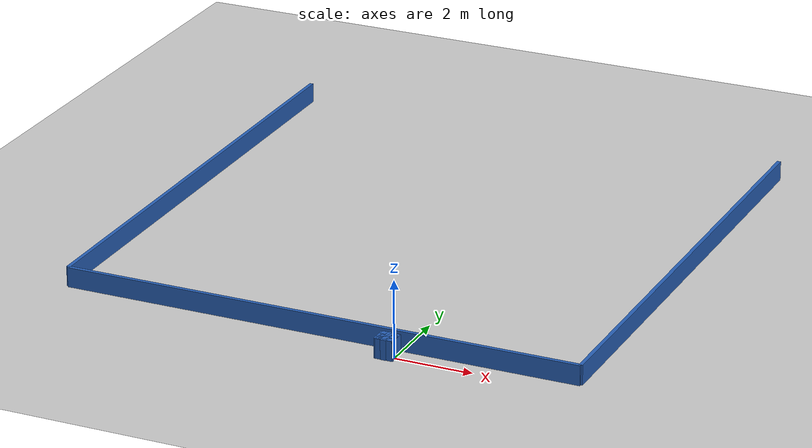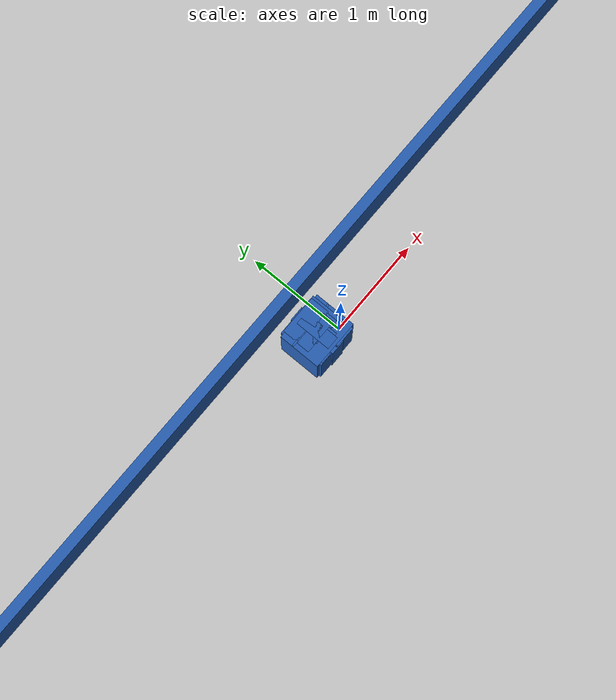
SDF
<?xml version="1.0" ?>
    <sdf version="1.5">
      <world name="default">
        <!-- A global light source -->
        <include>
          <uri>model://sun</uri>
        </include>
        <!-- A ground plane -->
        <include>
          <uri>model://ground_plane</uri>
        </include>

    <model name='libopen_space_final_T2B_51_1'>
      <static>1</static>
      <pose frame=''>-0.225000 0.075000 0.000000 0.000000 0.000000 0.000000</pose>
      <link name='link'>
        <inertial>
          <mass>1</mass>
          <inertia>
            <ixx>0.145833</ixx>
            <ixy>0</ixy>
            <ixz>0</ixz>
            <iyy>0.145833</iyy>
            <iyz>0</iyz>
            <izz>0.125</izz>
          </inertia>
        </inertial>
        <collision name='collision'>
          <geometry>
            <box>
              <size>0.50 0.42 1</size>
            </box>
          </geometry>
          <max_contacts>10</max_contacts>
          <surface>
            <contact>
              <ode/>
            </contact>
            <bounce/>
            <friction>
              <torsional>
                <ode/>
              </torsional>
              <ode/>
            </friction>
          </surface>
        </collision>
        <visual name='visual'>
          <geometry>
            <box>
              <size>0.50 0.42 1</size>
            </box>
          </geometry>
	    <material>
              <ambient>0.152000 0.379000 0.720000 1</ambient>
	      <diffuse>0.152000 0.379000 0.720000 1</diffuse>
          </material>
          <material>
            <script>
              <name>Gazebo/Grey</name>
              <uri>file://media/materials/scripts/gazebo.material</uri>
            </script>
          </material>
        </visual>
        <self_collide>0</self_collide>
        <kinematic>0</kinematic>
        <gravity>1</gravity>
      </link>
      <plugin name='libopen_space_final_T2B_51_1' filename='libopen_space_final_T2B_51_1.so'/>
    </model>

    <model name='libopen_space_final_T2B_57_87'>
      <static>1</static>
      <pose frame=''>-0.225000 0.075000 0.000000 0.000000 0.000000 0.000000</pose>
      <link name='link'>
        <inertial>
          <mass>1</mass>
          <inertia>
            <ixx>0.145833</ixx>
            <ixy>0</ixy>
            <ixz>0</ixz>
            <iyy>0.145833</iyy>
            <iyz>0</iyz>
            <izz>0.125</izz>
          </inertia>
        </inertial>
        <collision name='collision'>
          <geometry>
            <box>
              <size>0.39 0.45 1</size>
            </box>
          </geometry>
          <max_contacts>10</max_contacts>
          <surface>
            <contact>
              <ode/>
            </contact>
            <bounce/>
            <friction>
              <torsional>
                <ode/>
              </torsional>
              <ode/>
            </friction>
          </surface>
        </collision>
        <visual name='visual'>
          <geometry>
            <box>
              <size>0.39 0.45 1</size>
            </box>
          </geometry>
	    <material>
              <ambient>0.152000 0.379000 0.720000 1</ambient>
	      <diffuse>0.152000 0.379000 0.720000 1</diffuse>
          </material>
          <material>
            <script>
              <name>Gazebo/Grey</name>
              <uri>file://media/materials/scripts/gazebo.material</uri>
            </script>
          </material>
        </visual>
        <self_collide>0</self_collide>
        <kinematic>0</kinematic>
        <gravity>1</gravity>
      </link>
      <plugin name='libopen_space_final_T2B_57_87' filename='libopen_space_final_T2B_57_87.so'/>
    </model>

    <model name='libopen_space_final_T2B_52_49'>
      <static>1</static>
      <pose frame=''>-0.225000 0.075000 0.000000 0.000000 0.000000 0.000000</pose>
      <link name='link'>
        <inertial>
          <mass>1</mass>
          <inertia>
            <ixx>0.145833</ixx>
            <ixy>0</ixy>
            <ixz>0</ixz>
            <iyy>0.145833</iyy>
            <iyz>0</iyz>
            <izz>0.125</izz>
          </inertia>
        </inertial>
        <collision name='collision'>
          <geometry>
            <box>
              <size>0.49 0.17 1</size>
            </box>
          </geometry>
          <max_contacts>10</max_contacts>
          <surface>
            <contact>
              <ode/>
            </contact>
            <bounce/>
            <friction>
              <torsional>
                <ode/>
              </torsional>
              <ode/>
            </friction>
          </surface>
        </collision>
        <visual name='visual'>
          <geometry>
            <box>
              <size>0.49 0.17 1</size>
            </box>
          </geometry>
	    <material>
              <ambient>0.152000 0.379000 0.720000 1</ambient>
	      <diffuse>0.152000 0.379000 0.720000 1</diffuse>
          </material>
          <material>
            <script>
              <name>Gazebo/Grey</name>
              <uri>file://media/materials/scripts/gazebo.material</uri>
            </script>
          </material>
        </visual>
        <self_collide>0</self_collide>
        <kinematic>0</kinematic>
        <gravity>1</gravity>
      </link>
      <plugin name='libopen_space_final_T2B_52_49' filename='libopen_space_final_T2B_52_49.so'/>
    </model>

    <model name='libopen_space_final_T2B_148_40'>
      <static>1</static>
      <pose frame=''>-0.225000 0.075000 0.000000 0.000000 0.000000 0.000000</pose>
      <link name='link'>
        <inertial>
          <mass>1</mass>
          <inertia>
            <ixx>0.145833</ixx>
            <ixy>0</ixy>
            <ixz>0</ixz>
            <iyy>0.145833</iyy>
            <iyz>0</iyz>
            <izz>0.125</izz>
          </inertia>
        </inertial>
        <collision name='collision'>
          <geometry>
            <box>
              <size>0.40 0.13 1</size>
            </box>
          </geometry>
          <max_contacts>10</max_contacts>
          <surface>
            <contact>
              <ode/>
            </contact>
            <bounce/>
            <friction>
              <torsional>
                <ode/>
              </torsional>
              <ode/>
            </friction>
          </surface>
        </collision>
        <visual name='visual'>
          <geometry>
            <box>
              <size>0.40 0.13 1</size>
            </box>
          </geometry>
	    <material>
              <ambient>0.152000 0.379000 0.720000 1</ambient>
	      <diffuse>0.152000 0.379000 0.720000 1</diffuse>
          </material>
          <material>
            <script>
              <name>Gazebo/Grey</name>
              <uri>file://media/materials/scripts/gazebo.material</uri>
            </script>
          </material>
        </visual>
        <self_collide>0</self_collide>
        <kinematic>0</kinematic>
        <gravity>1</gravity>
      </link>
      <plugin name='libopen_space_final_T2B_148_40' filename='libopen_space_final_T2B_148_40.so'/>
    </model>

    <model name='libopen_space_final_T2B_52_73'>
      <static>1</static>
      <pose frame=''>-0.225000 0.075000 0.000000 0.000000 0.000000 0.000000</pose>
      <link name='link'>
        <inertial>
          <mass>1</mass>
          <inertia>
            <ixx>0.145833</ixx>
            <ixy>0</ixy>
            <ixz>0</ixz>
            <iyy>0.145833</iyy>
            <iyz>0</iyz>
            <izz>0.125</izz>
          </inertia>
        </inertial>
        <collision name='collision'>
          <geometry>
            <box>
              <size>0.18 0.30 1</size>
            </box>
          </geometry>
          <max_contacts>10</max_contacts>
          <surface>
            <contact>
              <ode/>
            </contact>
            <bounce/>
            <friction>
              <torsional>
                <ode/>
              </torsional>
              <ode/>
            </friction>
          </surface>
        </collision>
        <visual name='visual'>
          <geometry>
            <box>
              <size>0.18 0.30 1</size>
            </box>
          </geometry>
	    <material>
              <ambient>0.152000 0.379000 0.720000 1</ambient>
	      <diffuse>0.152000 0.379000 0.720000 1</diffuse>
          </material>
          <material>
            <script>
              <name>Gazebo/Grey</name>
              <uri>file://media/materials/scripts/gazebo.material</uri>
            </script>
          </material>
        </visual>
        <self_collide>0</self_collide>
        <kinematic>0</kinematic>
        <gravity>1</gravity>
      </link>
      <plugin name='libopen_space_final_T2B_52_73' filename='libopen_space_final_T2B_52_73.so'/>
    </model>

    <model name='libopen_space_final_T2B_112_98'>
      <static>1</static>
      <pose frame=''>-0.225000 0.075000 0.000000 0.000000 0.000000 0.000000</pose>
      <link name='link'>
        <inertial>
          <mass>1</mass>
          <inertia>
            <ixx>0.145833</ixx>
            <ixy>0</ixy>
            <ixz>0</ixz>
            <iyy>0.145833</iyy>
            <iyz>0</iyz>
            <izz>0.125</izz>
          </inertia>
        </inertial>
        <collision name='collision'>
          <geometry>
            <box>
              <size>0.13 0.36 1</size>
            </box>
          </geometry>
          <max_contacts>10</max_contacts>
          <surface>
            <contact>
              <ode/>
            </contact>
            <bounce/>
            <friction>
              <torsional>
                <ode/>
              </torsional>
              <ode/>
            </friction>
          </surface>
        </collision>
        <visual name='visual'>
          <geometry>
            <box>
              <size>0.13 0.36 1</size>
            </box>
          </geometry>
	    <material>
              <ambient>0.152000 0.379000 0.720000 1</ambient>
	      <diffuse>0.152000 0.379000 0.720000 1</diffuse>
          </material>
          <material>
            <script>
              <name>Gazebo/Grey</name>
              <uri>file://media/materials/scripts/gazebo.material</uri>
            </script>
          </material>
        </visual>
        <self_collide>0</self_collide>
        <kinematic>0</kinematic>
        <gravity>1</gravity>
      </link>
      <plugin name='libopen_space_final_T2B_112_98' filename='libopen_space_final_T2B_112_98.so'/>
    </model>

    <model name='libopen_space_final_T2B_116_74'>
      <static>1</static>
      <pose frame=''>-0.225000 0.075000 0.000000 0.000000 0.000000 0.000000</pose>
      <link name='link'>
        <inertial>
          <mass>1</mass>
          <inertia>
            <ixx>0.145833</ixx>
            <ixy>0</ixy>
            <ixz>0</ixz>
            <iyy>0.145833</iyy>
            <iyz>0</iyz>
            <izz>0.125</izz>
          </inertia>
        </inertial>
        <collision name='collision'>
          <geometry>
            <box>
              <size>0.19 0.17 1</size>
            </box>
          </geometry>
          <max_contacts>10</max_contacts>
          <surface>
            <contact>
              <ode/>
            </contact>
            <bounce/>
            <friction>
              <torsional>
                <ode/>
              </torsional>
              <ode/>
            </friction>
          </surface>
        </collision>
        <visual name='visual'>
          <geometry>
            <box>
              <size>0.19 0.17 1</size>
            </box>
          </geometry>
	    <material>
              <ambient>0.152000 0.379000 0.720000 1</ambient>
	      <diffuse>0.152000 0.379000 0.720000 1</diffuse>
          </material>
          <material>
            <script>
              <name>Gazebo/Grey</name>
              <uri>file://media/materials/scripts/gazebo.material</uri>
            </script>
          </material>
        </visual>
        <self_collide>0</self_collide>
        <kinematic>0</kinematic>
        <gravity>1</gravity>
      </link>
      <plugin name='libopen_space_final_T2B_116_74' filename='libopen_space_final_T2B_116_74.so'/>
    </model>

    <model name='libopen_space_final_T2B_115_24'>
      <static>1</static>
      <pose frame=''>-0.225000 0.075000 0.000000 0.000000 0.000000 0.000000</pose>
      <link name='link'>
        <inertial>
          <mass>1</mass>
          <inertia>
            <ixx>0.145833</ixx>
            <ixy>0</ixy>
            <ixz>0</ixz>
            <iyy>0.145833</iyy>
            <iyz>0</iyz>
            <izz>0.125</izz>
          </inertia>
        </inertial>
        <collision name='collision'>
          <geometry>
            <box>
              <size>0.44 0.46 1</size>
            </box>
          </geometry>
          <max_contacts>10</max_contacts>
          <surface>
            <contact>
              <ode/>
            </contact>
            <bounce/>
            <friction>
              <torsional>
                <ode/>
              </torsional>
              <ode/>
            </friction>
          </surface>
        </collision>
        <visual name='visual'>
          <geometry>
            <box>
              <size>0.44 0.46 1</size>
            </box>
          </geometry>
	    <material>
              <ambient>0.152000 0.379000 0.720000 1</ambient>
	      <diffuse>0.152000 0.379000 0.720000 1</diffuse>
          </material>
          <material>
            <script>
              <name>Gazebo/Grey</name>
              <uri>file://media/materials/scripts/gazebo.material</uri>
            </script>
          </material>
        </visual>
        <self_collide>0</self_collide>
        <kinematic>0</kinematic>
        <gravity>1</gravity>
      </link>
      <plugin name='libopen_space_final_T2B_115_24' filename='libopen_space_final_T2B_115_24.so'/>
    </model>

    <model name='libopen_space_final_T2B_125_67'>
      <static>1</static>
      <pose frame=''>-0.225000 0.075000 0.000000 0.000000 0.000000 0.000000</pose>
      <link name='link'>
        <inertial>
          <mass>1</mass>
          <inertia>
            <ixx>0.145833</ixx>
            <ixy>0</ixy>
            <ixz>0</ixz>
            <iyy>0.145833</iyy>
            <iyz>0</iyz>
            <izz>0.125</izz>
          </inertia>
        </inertial>
        <collision name='collision'>
          <geometry>
            <box>
              <size>0.12 0.34 1</size>
            </box>
          </geometry>
          <max_contacts>10</max_contacts>
          <surface>
            <contact>
              <ode/>
            </contact>
            <bounce/>
            <friction>
              <torsional>
                <ode/>
              </torsional>
              <ode/>
            </friction>
          </surface>
        </collision>
        <visual name='visual'>
          <geometry>
            <box>
              <size>0.12 0.34 1</size>
            </box>
          </geometry>
	    <material>
              <ambient>0.152000 0.379000 0.720000 1</ambient>
	      <diffuse>0.152000 0.379000 0.720000 1</diffuse>
          </material>
          <material>
            <script>
              <name>Gazebo/Grey</name>
              <uri>file://media/materials/scripts/gazebo.material</uri>
            </script>
          </material>
        </visual>
        <self_collide>0</self_collide>
        <kinematic>0</kinematic>
        <gravity>1</gravity>
      </link>
      <plugin name='libopen_space_final_T2B_125_67' filename='libopen_space_final_T2B_125_67.so'/>
    </model>

    <model name='libopen_space_final_T2B_90_15'>
      <static>1</static>
      <pose frame=''>-0.225000 0.075000 0.000000 0.000000 0.000000 0.000000</pose>
      <link name='link'>
        <inertial>
          <mass>1</mass>
          <inertia>
            <ixx>0.145833</ixx>
            <ixy>0</ixy>
            <ixz>0</ixz>
            <iyy>0.145833</iyy>
            <iyz>0</iyz>
            <izz>0.125</izz>
          </inertia>
        </inertial>
        <collision name='collision'>
          <geometry>
            <box>
              <size>0.15 0.48 1</size>
            </box>
          </geometry>
          <max_contacts>10</max_contacts>
          <surface>
            <contact>
              <ode/>
            </contact>
            <bounce/>
            <friction>
              <torsional>
                <ode/>
              </torsional>
              <ode/>
            </friction>
          </surface>
        </collision>
        <visual name='visual'>
          <geometry>
            <box>
              <size>0.15 0.48 1</size>
            </box>
          </geometry>
	    <material>
              <ambient>0.152000 0.379000 0.720000 1</ambient>
	      <diffuse>0.152000 0.379000 0.720000 1</diffuse>
          </material>
          <material>
            <script>
              <name>Gazebo/Grey</name>
              <uri>file://media/materials/scripts/gazebo.material</uri>
            </script>
          </material>
        </visual>
        <self_collide>0</self_collide>
        <kinematic>0</kinematic>
        <gravity>1</gravity>
      </link>
      <plugin name='libopen_space_final_T2B_90_15' filename='libopen_space_final_T2B_90_15.so'/>
    </model>

    <model name='libopen_space_final_T2B_122_30'>
      <static>1</static>
      <pose frame=''>-0.225000 0.075000 0.000000 0.000000 0.000000 0.000000</pose>
      <link name='link'>
        <inertial>
          <mass>1</mass>
          <inertia>
            <ixx>0.145833</ixx>
            <ixy>0</ixy>
            <ixz>0</ixz>
            <iyy>0.145833</iyy>
            <iyz>0</iyz>
            <izz>0.125</izz>
          </inertia>
        </inertial>
        <collision name='collision'>
          <geometry>
            <box>
              <size>0.36 0.22 1</size>
            </box>
          </geometry>
          <max_contacts>10</max_contacts>
          <surface>
            <contact>
              <ode/>
            </contact>
            <bounce/>
            <friction>
              <torsional>
                <ode/>
              </torsional>
              <ode/>
            </friction>
          </surface>
        </collision>
        <visual name='visual'>
          <geometry>
            <box>
              <size>0.36 0.22 1</size>
            </box>
          </geometry>
	    <material>
              <ambient>0.152000 0.379000 0.720000 1</ambient>
	      <diffuse>0.152000 0.379000 0.720000 1</diffuse>
          </material>
          <material>
            <script>
              <name>Gazebo/Grey</name>
              <uri>file://media/materials/scripts/gazebo.material</uri>
            </script>
          </material>
        </visual>
        <self_collide>0</self_collide>
        <kinematic>0</kinematic>
        <gravity>1</gravity>
      </link>
      <plugin name='libopen_space_final_T2B_122_30' filename='libopen_space_final_T2B_122_30.so'/>
    </model>

    <model name='libopen_space_final_T2B_118_50'>
      <static>1</static>
      <pose frame=''>-0.225000 0.075000 0.000000 0.000000 0.000000 0.000000</pose>
      <link name='link'>
        <inertial>
          <mass>1</mass>
          <inertia>
            <ixx>0.145833</ixx>
            <ixy>0</ixy>
            <ixz>0</ixz>
            <iyy>0.145833</iyy>
            <iyz>0</iyz>
            <izz>0.125</izz>
          </inertia>
        </inertial>
        <collision name='collision'>
          <geometry>
            <box>
              <size>0.31 0.12 1</size>
            </box>
          </geometry>
          <max_contacts>10</max_contacts>
          <surface>
            <contact>
              <ode/>
            </contact>
            <bounce/>
            <friction>
              <torsional>
                <ode/>
              </torsional>
              <ode/>
            </friction>
          </surface>
        </collision>
        <visual name='visual'>
          <geometry>
            <box>
              <size>0.31 0.12 1</size>
            </box>
          </geometry>
	    <material>
              <ambient>0.152000 0.379000 0.720000 1</ambient>
	      <diffuse>0.152000 0.379000 0.720000 1</diffuse>
          </material>
          <material>
            <script>
              <name>Gazebo/Grey</name>
              <uri>file://media/materials/scripts/gazebo.material</uri>
            </script>
          </material>
        </visual>
        <self_collide>0</self_collide>
        <kinematic>0</kinematic>
        <gravity>1</gravity>
      </link>
      <plugin name='libopen_space_final_T2B_118_50' filename='libopen_space_final_T2B_118_50.so'/>
    </model>

    <model name='libopen_space_final_T2B_85_42'>
      <static>1</static>
      <pose frame=''>-0.225000 0.075000 0.000000 0.000000 0.000000 0.000000</pose>
      <link name='link'>
        <inertial>
          <mass>1</mass>
          <inertia>
            <ixx>0.145833</ixx>
            <ixy>0</ixy>
            <ixz>0</ixz>
            <iyy>0.145833</iyy>
            <iyz>0</iyz>
            <izz>0.125</izz>
          </inertia>
        </inertial>
        <collision name='collision'>
          <geometry>
            <box>
              <size>0.36 0.15 1</size>
            </box>
          </geometry>
          <max_contacts>10</max_contacts>
          <surface>
            <contact>
              <ode/>
            </contact>
            <bounce/>
            <friction>
              <torsional>
                <ode/>
              </torsional>
              <ode/>
            </friction>
          </surface>
        </collision>
        <visual name='visual'>
          <geometry>
            <box>
              <size>0.36 0.15 1</size>
            </box>
          </geometry>
	    <material>
              <ambient>0.152000 0.379000 0.720000 1</ambient>
	      <diffuse>0.152000 0.379000 0.720000 1</diffuse>
          </material>
          <material>
            <script>
              <name>Gazebo/Grey</name>
              <uri>file://media/materials/scripts/gazebo.material</uri>
            </script>
          </material>
        </visual>
        <self_collide>0</self_collide>
        <kinematic>0</kinematic>
        <gravity>1</gravity>
      </link>
      <plugin name='libopen_space_final_T2B_85_42' filename='libopen_space_final_T2B_85_42.so'/>
    </model>

        <model name='bottom_wall'>
          <static>1</static>
          <pose frame=''>-2.25 0.5 0.000000 0.000000 0.000000 1.57079632</pose>
          <link name='link'>
            <inertial>
            <mass>1</mass>
            <inertia>
              <ixx>0.145833</ixx>
              <ixy>0</ixy>
              <ixz>0</ixz>
              <iyy>0.145833</iyy>
              <iyz>0</iyz>
              <izz>0.125</izz>
            </inertia>
            </inertial>
            <collision name='collision'>
            <geometry>
              <box>
              <size>0.1 13.5 1</size>
              </box>
            </geometry>
            <max_contacts>10</max_contacts>
            <surface>
              <contact>
              <ode/>
              </contact>
              <bounce/>
              <friction>
              <torsional>
                <ode/>
              </torsional>
              <ode/>
              </friction>
            </surface>
            </collision>
            <visual name='visual'>
            <geometry>
              <box>
              <size>0.1 13.5 1</size>
              </box>
            </geometry>
            <material>
              <ambient>0.152000 0.379000 0.720000 1</ambient>
            <diffuse>0.152000 0.379000 0.720000 1</diffuse>
            </material>
            <material>
              <script>
              <name>Gazebo/Grey</name>
              <uri>file://media/materials/scripts/gazebo.material</uri>
              </script>
            </material>
            </visual>
            <self_collide>0</self_collide>
            <kinematic>0</kinematic>
            <gravity>1</gravity>
          </link>
        </model>

        <model name='left_wall'>
          <static>1</static>
          <pose frame=''>-9 7.25 0.000000 0.000000 0.000000 0.000000</pose>
          <link name='link'>
            <inertial>
            <mass>1</mass>
            <inertia>
              <ixx>0.145833</ixx>
              <ixy>0</ixy>
              <ixz>0</ixz>
              <iyy>0.145833</iyy>
              <iyz>0</iyz>
              <izz>0.125</izz>
            </inertia>
            </inertial>
            <collision name='collision'>
            <geometry>
              <box>
              <size>0.1 13.5 1</size>
              </box>
            </geometry>
            <max_contacts>10</max_contacts>
            <surface>
              <contact>
              <ode/>
              </contact>
              <bounce/>
              <friction>
              <torsional>
                <ode/>
              </torsional>
              <ode/>
              </friction>
            </surface>
            </collision>
            <visual name='visual'>
            <geometry>
              <box>
              <size>0.1 13.5 1</size>
              </box>
            </geometry>
            <material>
              <ambient>0.152000 0.379000 0.720000 1</ambient>
            <diffuse>0.152000 0.379000 0.720000 1</diffuse>
            </material>
            <material>
              <script>
              <name>Gazebo/Grey</name>
              <uri>file://media/materials/scripts/gazebo.material</uri>
              </script>
            </material>
            </visual>
            <self_collide>0</self_collide>
            <kinematic>0</kinematic>
            <gravity>1</gravity>
          </link>
        </model>

        <model name='right_wall'>
          <static>1</static>
          <pose frame=''>4.5 7.25 0.000000 0.000000 0.000000 0.000000</pose>
          <link name='link'>
            <inertial>
            <mass>1</mass>
            <inertia>
              <ixx>0.145833</ixx>
              <ixy>0</ixy>
              <ixz>0</ixz>
              <iyy>0.145833</iyy>
              <iyz>0</iyz>
              <izz>0.125</izz>
            </inertia>
            </inertial>
            <collision name='collision'>
            <geometry>
              <box>
              <size>0.1 13.5 1</size>
              </box>
            </geometry>
            <max_contacts>10</max_contacts>
            <surface>
              <contact>
              <ode/>
              </contact>
              <bounce/>
              <friction>
              <torsional>
                <ode/>
              </torsional>
              <ode/>
              </friction>
            </surface>
            </collision>
            <visual name='visual'>
            <geometry>
              <box>
              <size>0.1 13.5 1</size>
              </box>
            </geometry>
            <material>
              <ambient>0.152000 0.379000 0.720000 1</ambient>
            <diffuse>0.152000 0.379000 0.720000 1</diffuse>
            </material>
            <material>
              <script>
              <name>Gazebo/Grey</name>
              <uri>file://media/materials/scripts/gazebo.material</uri>
              </script>
            </material>
            </visual>
            <self_collide>0</self_collide>
            <kinematic>0</kinematic>
            <gravity>1</gravity>
          </link>
        </model>

      </world>
    </sdf>"
